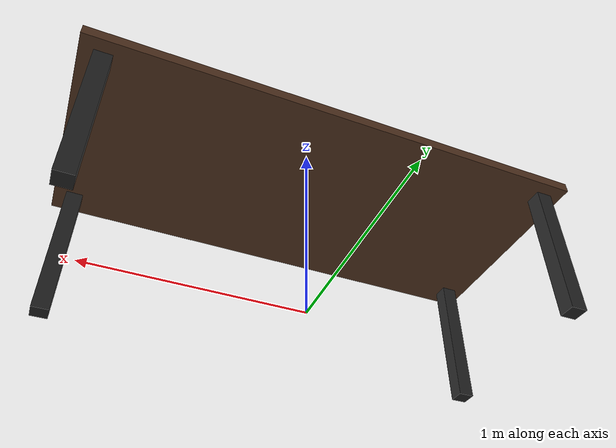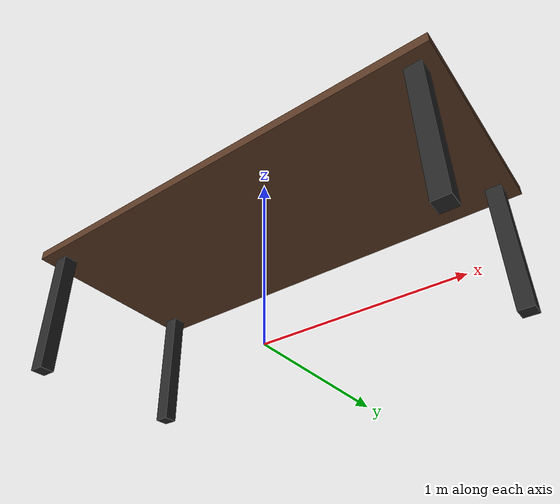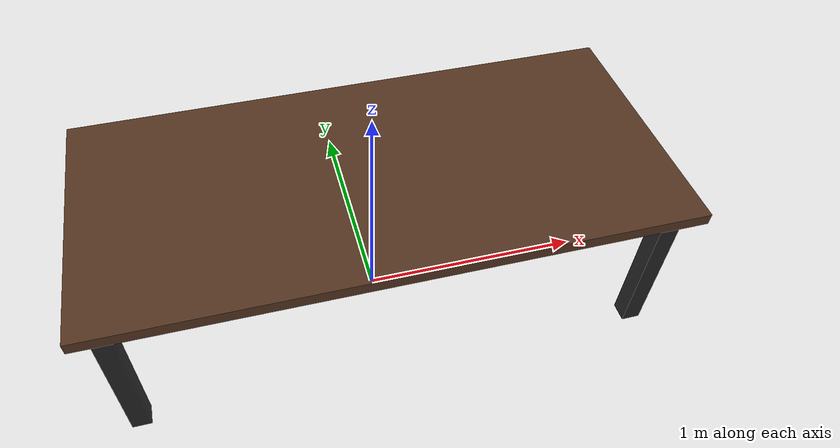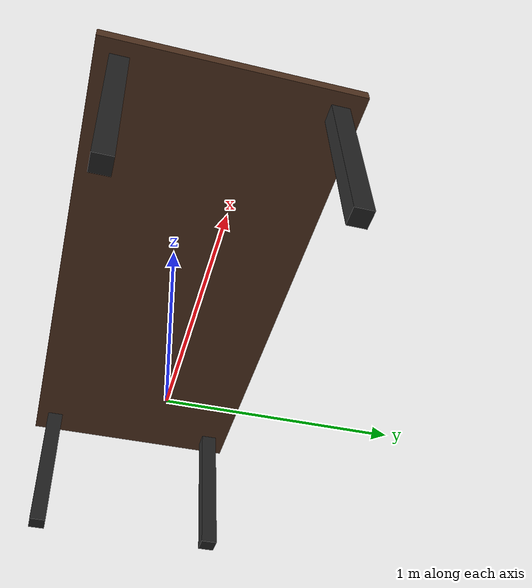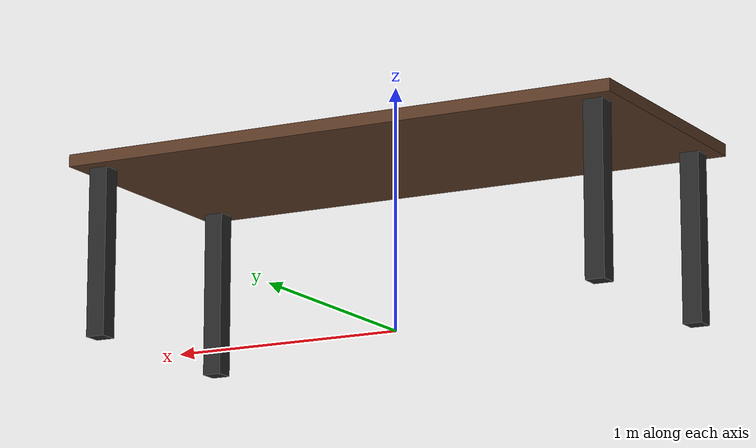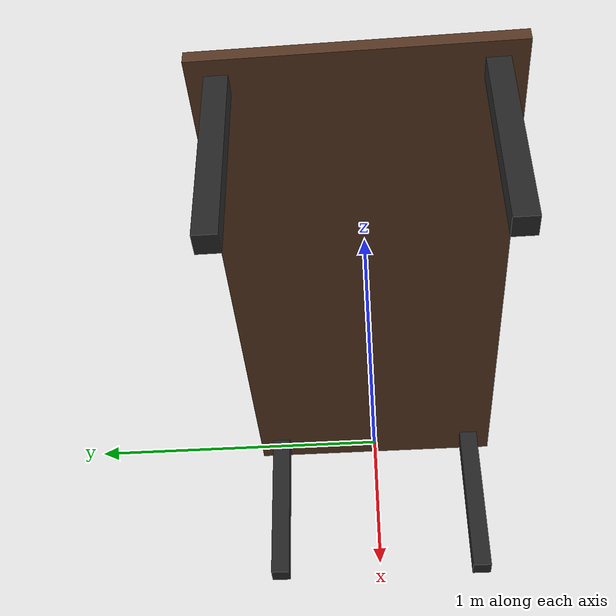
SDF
<?xml version="1.0"?>

<sdf version="1.10">

  <model name="meeting_table">

    <static>true</static>

    <link name="table_link">

      <collision name="top_collision">
        <pose>0 0 0.72 0 0 0</pose>
        <geometry>
          <box>
            <size>2.4 1.1 0.05</size>
          </box>
        </geometry>
      </collision>

      <visual name="top_visual">
        <pose>0 0 0.72 0 0 0</pose>
        <geometry>
          <box>
            <size>2.4 1.1 0.05</size>
          </box>
        </geometry>
        <material>
          <ambient>0.35 0.22 0.14 1</ambient>
          <diffuse>0.35 0.22 0.14 1</diffuse>
          <specular>0.3 0.3 0.3 1</specular>
        </material>
      </visual>

      <!-- LEG 1                      -->

      <collision name="leg_1_collision">
        <pose>1.1 0.45 0.36 0 0 0</pose>
        <geometry>
          <box>
            <size>0.08 0.08 0.72</size>
          </box>
        </geometry>
      </collision>

      <visual name="leg_1_visual">
        <pose>1.1 0.45 0.36 0 0 0</pose>
        <geometry>
          <box>
            <size>0.08 0.08 0.72</size>
          </box>
        </geometry>
        <material>
          <ambient>0.15 0.15 0.15 1</ambient>
          <diffuse>0.15 0.15 0.15 1</diffuse>
        </material>
      </visual>

      <!-- LEG 2                      -->

      <collision name="leg_2_collision">
        <pose>-1.1 0.45 0.36 0 0 0</pose>
        <geometry>
          <box>
            <size>0.08 0.08 0.72</size>
          </box>
        </geometry>
      </collision>

      <visual name="leg_2_visual">
        <pose>-1.1 0.45 0.36 0 0 0</pose>
        <geometry>
          <box>
            <size>0.08 0.08 0.72</size>
          </box>
        </geometry>
        <material>
          <ambient>0.15 0.15 0.15 1</ambient>
          <diffuse>0.15 0.15 0.15 1</diffuse>
        </material>
      </visual>

      <!-- LEG 3                      -->

      <collision name="leg_3_collision">
        <pose>1.1 -0.45 0.36 0 0 0</pose>
        <geometry>
          <box>
            <size>0.08 0.08 0.72</size>
          </box>
        </geometry>
      </collision>

      <visual name="leg_3_visual">
        <pose>1.1 -0.45 0.36 0 0 0</pose>
        <geometry>
          <box>
            <size>0.08 0.08 0.72</size>
          </box>
        </geometry>
        <material>
          <ambient>0.15 0.15 0.15 1</ambient>
          <diffuse>0.15 0.15 0.15 1</diffuse>
        </material>
      </visual>

      <!-- LEG 4                      -->

      <collision name="leg_4_collision">
        <pose>-1.1 -0.45 0.36 0 0 0</pose>
        <geometry>
          <box>
            <size>0.08 0.08 0.72</size>
          </box>
        </geometry>
      </collision>

      <visual name="leg_4_visual">
        <pose>-1.1 -0.45 0.36 0 0 0</pose>
        <geometry>
          <box>
            <size>0.08 0.08 0.72</size>
          </box>
        </geometry>
        <material>
          <ambient>0.15 0.15 0.15 1</ambient>
          <diffuse>0.15 0.15 0.15 1</diffuse>
        </material>
      </visual>

    </link>

  </model>

</sdf>
